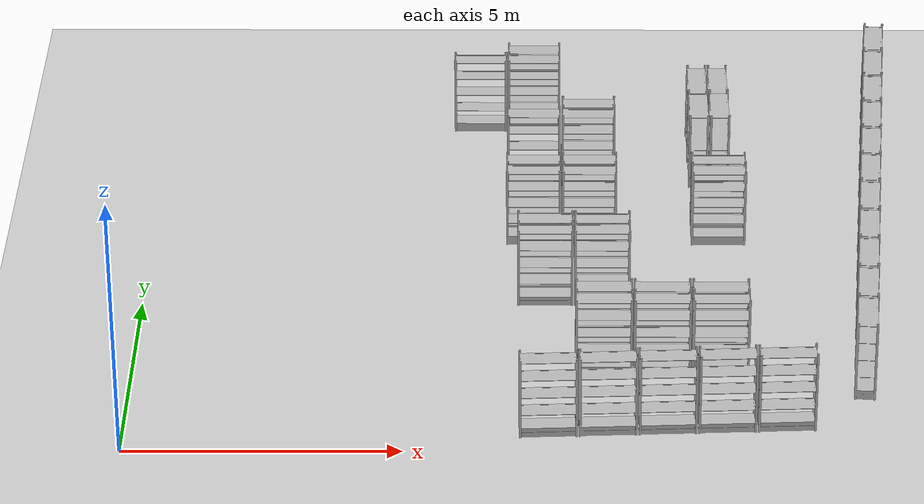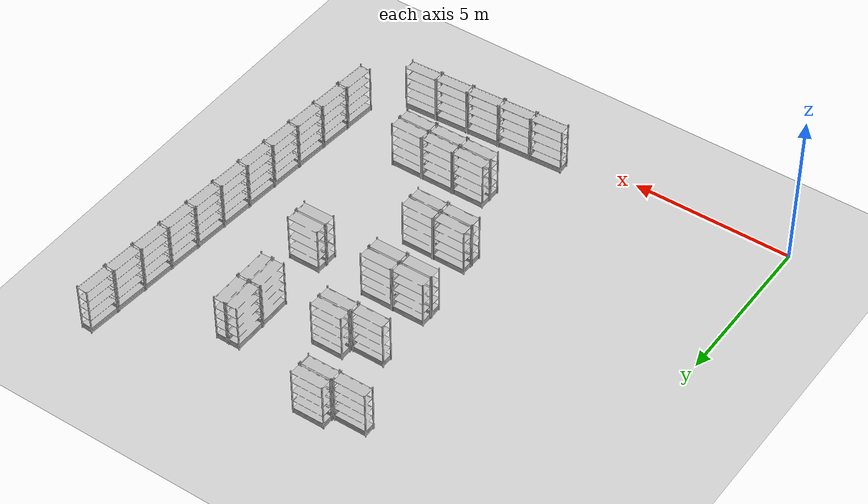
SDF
<sdf version="1.6">
 <world name="default">
  <model name="ground_plane">
   <static>1</static>
   <link name="link">
    <collision name="collision">
     <geometry><plane><normal>0 0 1</normal><size>100 100</size></plane></geometry>
     <surface>
      <contact><collide_bitmask>65535</collide_bitmask></contact>
      <friction><ode><mu>1000</mu><mu2>1000</mu2></ode></friction>
     </surface>
    </collision>
    <visual name="visual">
     <cast_shadows>0</cast_shadows>
     <geometry><plane><normal>0 0 1</normal><size>100 100</size></plane></geometry>
     <material>
      <script><uri>file://media/materials/scripts/gazebo.material</uri><name>Gazebo/Grey</name></script>
     </material>
    </visual>
   </link>
  </model>
  <model name="store_shelf_moduled_4">
   <link name="link">
    <collision name="collision">
     <geometry><mesh><uri>model://store_shelf_moduled/meshes/store_shelf_moduled.dae</uri></mesh></geometry>
    </collision>
    <visual name="visual">
     <geometry><mesh><uri>model://store_shelf_moduled/meshes/store_shelf_moduled.dae</uri></mesh></geometry>
    </visual>
    <inertial>
     <mass>1000</mass>
     <inertia>
      <ixx>840083</ixx>
      <ixy>0</ixy>
      <ixz>0</ixz>
      <iyy>475500</iyy>
      <iyz>0</iyz>
      <izz>1.30208e+06</izz>
     </inertia>
    </inertial>
   </link>
   <static>1</static>
   <pose>7.035482 0.4298979 0 0 0 0.04519106</pose>
  </model>
  <model name="store_shelf_moduled_5">
   <link name="link">
    <collision name="collision">
     <geometry><mesh><uri>model://store_shelf_moduled/meshes/store_shelf_moduled.dae</uri></mesh></geometry>
    </collision>
    <visual name="visual">
     <geometry><mesh><uri>model://store_shelf_moduled/meshes/store_shelf_moduled.dae</uri></mesh></geometry>
    </visual>
    <inertial>
     <mass>1000</mass>
     <inertia>
      <ixx>840083</ixx>
      <ixy>0</ixy>
      <ixz>0</ixz>
      <iyy>475500</iyy>
      <iyz>0</iyz>
      <izz>1.30208e+06</izz>
     </inertia>
    </inertial>
   </link>
   <static>1</static>
   <pose>8.095482 0.4798979 0 0 0 0.04519106</pose>
  </model>
  <model name="store_shelf_moduled_6">
   <link name="link">
    <collision name="collision">
     <geometry><mesh><uri>model://store_shelf_moduled/meshes/store_shelf_moduled.dae</uri></mesh></geometry>
    </collision>
    <visual name="visual">
     <geometry><mesh><uri>model://store_shelf_moduled/meshes/store_shelf_moduled.dae</uri></mesh></geometry>
    </visual>
    <inertial>
     <mass>1000</mass>
     <inertia>
      <ixx>840083</ixx>
      <ixy>0</ixy>
      <ixz>0</ixz>
      <iyy>475500</iyy>
      <iyz>0</iyz>
      <izz>1.30208e+06</izz>
     </inertia>
    </inertial>
   </link>
   <static>1</static>
   <pose>9.155482 0.5298979 0 0 0 0.04519106</pose>
  </model>
  <model name="store_shelf_moduled_7">
   <link name="link">
    <collision name="collision">
     <geometry><mesh><uri>model://store_shelf_moduled/meshes/store_shelf_moduled.dae</uri></mesh></geometry>
    </collision>
    <visual name="visual">
     <geometry><mesh><uri>model://store_shelf_moduled/meshes/store_shelf_moduled.dae</uri></mesh></geometry>
    </visual>
    <inertial>
     <mass>1000</mass>
     <inertia>
      <ixx>840083</ixx>
      <ixy>0</ixy>
      <ixz>0</ixz>
      <iyy>475500</iyy>
      <iyz>0</iyz>
      <izz>1.30208e+06</izz>
     </inertia>
    </inertial>
   </link>
   <static>1</static>
   <pose>10.21548 0.5798979 0 0 0 0.04519106</pose>
  </model>
  <model name="store_shelf_moduled_8">
   <link name="link">
    <collision name="collision">
     <geometry><mesh><uri>model://store_shelf_moduled/meshes/store_shelf_moduled.dae</uri></mesh></geometry>
    </collision>
    <visual name="visual">
     <geometry><mesh><uri>model://store_shelf_moduled/meshes/store_shelf_moduled.dae</uri></mesh></geometry>
    </visual>
    <inertial>
     <mass>1000</mass>
     <inertia>
      <ixx>840083</ixx>
      <ixy>0</ixy>
      <ixz>0</ixz>
      <iyy>475500</iyy>
      <iyz>0</iyz>
      <izz>1.30208e+06</izz>
     </inertia>
    </inertial>
   </link>
   <static>1</static>
   <pose>11.27548 0.6298979 0 0 0 0.04519106</pose>
  </model>
  <model name="store_shelf_moduled_9">
   <link name="link">
    <collision name="collision">
     <geometry><mesh><uri>model://store_shelf_moduled/meshes/store_shelf_moduled.dae</uri></mesh></geometry>
    </collision>
    <visual name="visual">
     <geometry><mesh><uri>model://store_shelf_moduled/meshes/store_shelf_moduled.dae</uri></mesh></geometry>
    </visual>
    <inertial>
     <mass>1000</mass>
     <inertia>
      <ixx>840083</ixx>
      <ixy>0</ixy>
      <ixz>0</ixz>
      <iyy>475500</iyy>
      <iyz>0</iyz>
      <izz>1.30208e+06</izz>
     </inertia>
    </inertial>
   </link>
   <static>1</static>
   <pose>13.45029 1.687601 0 0 0 1.494713</pose>
  </model>
  <model name="store_shelf_moduled_10">
   <link name="link">
    <collision name="collision">
     <geometry><mesh><uri>model://store_shelf_moduled/meshes/store_shelf_moduled.dae</uri></mesh></geometry>
    </collision>
    <visual name="visual">
     <geometry><mesh><uri>model://store_shelf_moduled/meshes/store_shelf_moduled.dae</uri></mesh></geometry>
    </visual>
    <inertial>
     <mass>1000</mass>
     <inertia>
      <ixx>840083</ixx>
      <ixy>0</ixy>
      <ixz>0</ixz>
      <iyy>475500</iyy>
      <iyz>0</iyz>
      <izz>1.30208e+06</izz>
     </inertia>
    </inertial>
   </link>
   <static>1</static>
   <pose>13.53029 2.747601 0 0 0 1.494713</pose>
  </model>
  <model name="store_shelf_moduled_11">
   <link name="link">
    <collision name="collision">
     <geometry><mesh><uri>model://store_shelf_moduled/meshes/store_shelf_moduled.dae</uri></mesh></geometry>
    </collision>
    <visual name="visual">
     <geometry><mesh><uri>model://store_shelf_moduled/meshes/store_shelf_moduled.dae</uri></mesh></geometry>
    </visual>
    <inertial>
     <mass>1000</mass>
     <inertia>
      <ixx>840083</ixx>
      <ixy>0</ixy>
      <ixz>0</ixz>
      <iyy>475500</iyy>
      <iyz>0</iyz>
      <izz>1.30208e+06</izz>
     </inertia>
    </inertial>
   </link>
   <static>1</static>
   <pose>13.61029 3.807601 0 0 0 1.494713</pose>
  </model>
  <model name="store_shelf_moduled_12">
   <link name="link">
    <collision name="collision">
     <geometry><mesh><uri>model://store_shelf_moduled/meshes/store_shelf_moduled.dae</uri></mesh></geometry>
    </collision>
    <visual name="visual">
     <geometry><mesh><uri>model://store_shelf_moduled/meshes/store_shelf_moduled.dae</uri></mesh></geometry>
    </visual>
    <inertial>
     <mass>1000</mass>
     <inertia>
      <ixx>840083</ixx>
      <ixy>0</ixy>
      <ixz>0</ixz>
      <iyy>475500</iyy>
      <iyz>0</iyz>
      <izz>1.30208e+06</izz>
     </inertia>
    </inertial>
   </link>
   <static>1</static>
   <pose>13.69029 4.857601 0 0 0 1.494713</pose>
  </model>
  <model name="store_shelf_moduled_13">
   <link name="link">
    <collision name="collision">
     <geometry><mesh><uri>model://store_shelf_moduled/meshes/store_shelf_moduled.dae</uri></mesh></geometry>
    </collision>
    <visual name="visual">
     <geometry><mesh><uri>model://store_shelf_moduled/meshes/store_shelf_moduled.dae</uri></mesh></geometry>
    </visual>
    <inertial>
     <mass>1000</mass>
     <inertia>
      <ixx>840083</ixx>
      <ixy>0</ixy>
      <ixz>0</ixz>
      <iyy>475500</iyy>
      <iyz>0</iyz>
      <izz>1.30208e+06</izz>
     </inertia>
    </inertial>
   </link>
   <static>1</static>
   <pose>13.77029 5.917601 0 0 0 1.494713</pose>
  </model>
  <model name="store_shelf_moduled_14">
   <link name="link">
    <collision name="collision">
     <geometry><mesh><uri>model://store_shelf_moduled/meshes/store_shelf_moduled.dae</uri></mesh></geometry>
    </collision>
    <visual name="visual">
     <geometry><mesh><uri>model://store_shelf_moduled/meshes/store_shelf_moduled.dae</uri></mesh></geometry>
    </visual>
    <inertial>
     <mass>1000</mass>
     <inertia>
      <ixx>840083</ixx>
      <ixy>0</ixy>
      <ixz>0</ixz>
      <iyy>475500</iyy>
      <iyz>0</iyz>
      <izz>1.30208e+06</izz>
     </inertia>
    </inertial>
   </link>
   <static>1</static>
   <pose>13.85029 6.977601 0 0 0 1.494713</pose>
  </model>
  <model name="store_shelf_moduled_15">
   <link name="link">
    <collision name="collision">
     <geometry><mesh><uri>model://store_shelf_moduled/meshes/store_shelf_moduled.dae</uri></mesh></geometry>
    </collision>
    <visual name="visual">
     <geometry><mesh><uri>model://store_shelf_moduled/meshes/store_shelf_moduled.dae</uri></mesh></geometry>
    </visual>
    <inertial>
     <mass>1000</mass>
     <inertia>
      <ixx>840083</ixx>
      <ixy>0</ixy>
      <ixz>0</ixz>
      <iyy>475500</iyy>
      <iyz>0</iyz>
      <izz>1.30208e+06</izz>
     </inertia>
    </inertial>
   </link>
   <static>1</static>
   <pose>13.93029 8.0276 0 0 0 1.494713</pose>
  </model>
  <model name="store_shelf_moduled_16">
   <link name="link">
    <collision name="collision">
     <geometry><mesh><uri>model://store_shelf_moduled/meshes/store_shelf_moduled.dae</uri></mesh></geometry>
    </collision>
    <visual name="visual">
     <geometry><mesh><uri>model://store_shelf_moduled/meshes/store_shelf_moduled.dae</uri></mesh></geometry>
    </visual>
    <inertial>
     <mass>1000</mass>
     <inertia>
      <ixx>840083</ixx>
      <ixy>0</ixy>
      <ixz>0</ixz>
      <iyy>475500</iyy>
      <iyz>0</iyz>
      <izz>1.30208e+06</izz>
     </inertia>
    </inertial>
   </link>
   <static>1</static>
   <pose>14.01029 9.087601 0 0 0 1.494713</pose>
  </model>
  <model name="store_shelf_moduled_17">
   <link name="link">
    <collision name="collision">
     <geometry><mesh><uri>model://store_shelf_moduled/meshes/store_shelf_moduled.dae</uri></mesh></geometry>
    </collision>
    <visual name="visual">
     <geometry><mesh><uri>model://store_shelf_moduled/meshes/store_shelf_moduled.dae</uri></mesh></geometry>
    </visual>
    <inertial>
     <mass>1000</mass>
     <inertia>
      <ixx>840083</ixx>
      <ixy>0</ixy>
      <ixz>0</ixz>
      <iyy>475500</iyy>
      <iyz>0</iyz>
      <izz>1.30208e+06</izz>
     </inertia>
    </inertial>
   </link>
   <static>1</static>
   <pose>14.09029 10.1476 0 0 0 1.494713</pose>
  </model>
  <model name="store_shelf_moduled_18">
   <link name="link">
    <collision name="collision">
     <geometry><mesh><uri>model://store_shelf_moduled/meshes/store_shelf_moduled.dae</uri></mesh></geometry>
    </collision>
    <visual name="visual">
     <geometry><mesh><uri>model://store_shelf_moduled/meshes/store_shelf_moduled.dae</uri></mesh></geometry>
    </visual>
    <inertial>
     <mass>1000</mass>
     <inertia>
      <ixx>840083</ixx>
      <ixy>0</ixy>
      <ixz>0</ixz>
      <iyy>475500</iyy>
      <iyz>0</iyz>
      <izz>1.30208e+06</izz>
     </inertia>
    </inertial>
   </link>
   <static>1</static>
   <pose>14.17029 11.1976 0 0 0 1.494713</pose>
  </model>
  <model name="store_shelf_moduled_19">
   <link name="link">
    <collision name="collision">
     <geometry><mesh><uri>model://store_shelf_moduled/meshes/store_shelf_moduled.dae</uri></mesh></geometry>
    </collision>
    <visual name="visual">
     <geometry><mesh><uri>model://store_shelf_moduled/meshes/store_shelf_moduled.dae</uri></mesh></geometry>
    </visual>
    <inertial>
     <mass>1000</mass>
     <inertia>
      <ixx>840083</ixx>
      <ixy>0</ixy>
      <ixz>0</ixz>
      <iyy>475500</iyy>
      <iyz>0</iyz>
      <izz>1.30208e+06</izz>
     </inertia>
    </inertial>
   </link>
   <static>1</static>
   <pose>14.25029 12.2576 0 0 0 1.494713</pose>
  </model>
  <model name="store_shelf_moduled_34">
   <link name="link">
    <collision name="collision">
     <geometry><mesh><uri>model://store_shelf_moduled/meshes/store_shelf_moduled.dae</uri></mesh></geometry>
    </collision>
    <visual name="visual">
     <geometry><mesh><uri>model://store_shelf_moduled/meshes/store_shelf_moduled.dae</uri></mesh></geometry>
    </visual>
    <inertial>
     <mass>1000</mass>
     <inertia>
      <ixx>840083</ixx>
      <ixy>0</ixy>
      <ixz>0</ixz>
      <iyy>475500</iyy>
      <iyz>0</iyz>
      <izz>1.30208e+06</izz>
     </inertia>
    </inertial>
   </link>
   <static>1</static>
   <pose>7.82 9.84 0 0 0 -3.141593</pose>
  </model>
  <model name="store_shelf_moduled_35">
   <link name="link">
    <collision name="collision">
     <geometry><mesh><uri>model://store_shelf_moduled/meshes/store_shelf_moduled.dae</uri></mesh></geometry>
    </collision>
    <visual name="visual">
     <geometry><mesh><uri>model://store_shelf_moduled/meshes/store_shelf_moduled.dae</uri></mesh></geometry>
    </visual>
    <inertial>
     <mass>1000</mass>
     <inertia>
      <ixx>840083</ixx>
      <ixy>0</ixy>
      <ixz>0</ixz>
      <iyy>475500</iyy>
      <iyz>0</iyz>
      <izz>1.30208e+06</izz>
     </inertia>
    </inertial>
   </link>
   <static>1</static>
   <pose>7.82 9.84 0 0 0 0</pose>
  </model>
  <model name="store_shelf_moduled_36">
   <link name="link">
    <collision name="collision">
     <geometry><mesh><uri>model://store_shelf_moduled/meshes/store_shelf_moduled.dae</uri></mesh></geometry>
    </collision>
    <visual name="visual">
     <geometry><mesh><uri>model://store_shelf_moduled/meshes/store_shelf_moduled.dae</uri></mesh></geometry>
    </visual>
    <inertial>
     <mass>1000</mass>
     <inertia>
      <ixx>840083</ixx>
      <ixy>0</ixy>
      <ixz>0</ixz>
      <iyy>475500</iyy>
      <iyz>0</iyz>
      <izz>1.30208e+06</izz>
     </inertia>
    </inertial>
   </link>
   <static>1</static>
   <pose>8.88 9.84 0 0 0 -3.141593</pose>
  </model>
  <model name="store_shelf_moduled_37">
   <link name="link">
    <collision name="collision">
     <geometry><mesh><uri>model://store_shelf_moduled/meshes/store_shelf_moduled.dae</uri></mesh></geometry>
    </collision>
    <visual name="visual">
     <geometry><mesh><uri>model://store_shelf_moduled/meshes/store_shelf_moduled.dae</uri></mesh></geometry>
    </visual>
    <inertial>
     <mass>1000</mass>
     <inertia>
      <ixx>840083</ixx>
      <ixy>0</ixy>
      <ixz>0</ixz>
      <iyy>475500</iyy>
      <iyz>0</iyz>
      <izz>1.30208e+06</izz>
     </inertia>
    </inertial>
   </link>
   <static>1</static>
   <pose>10.28 7.6 0 0 0 0</pose>
  </model>
  <model name="store_shelf_moduled_38">
   <link name="link">
    <collision name="collision">
     <geometry><mesh><uri>model://store_shelf_moduled/meshes/store_shelf_moduled.dae</uri></mesh></geometry>
    </collision>
    <visual name="visual">
     <geometry><mesh><uri>model://store_shelf_moduled/meshes/store_shelf_moduled.dae</uri></mesh></geometry>
    </visual>
    <inertial>
     <mass>1000</mass>
     <inertia>
      <ixx>840083</ixx>
      <ixy>0</ixy>
      <ixz>0</ixz>
      <iyy>475500</iyy>
      <iyz>0</iyz>
      <izz>1.30208e+06</izz>
     </inertia>
    </inertial>
   </link>
   <static>1</static>
   <pose>11.34 7.6 0 0 0 -3.141593</pose>
  </model>
  <model name="store_shelf_moduled_41">
   <link name="link">
    <collision name="collision">
     <geometry><mesh><uri>model://store_shelf_moduled/meshes/store_shelf_moduled.dae</uri></mesh></geometry>
    </collision>
    <visual name="visual">
     <geometry><mesh><uri>model://store_shelf_moduled/meshes/store_shelf_moduled.dae</uri></mesh></geometry>
    </visual>
    <inertial>
     <mass>1000</mass>
     <inertia>
      <ixx>840083</ixx>
      <ixy>0</ixy>
      <ixz>0</ixz>
      <iyy>475500</iyy>
      <iyz>0</iyz>
      <izz>1.30208e+06</izz>
     </inertia>
    </inertial>
   </link>
   <static>1</static>
   <pose>6.76 7.6 0 0 0 0</pose>
  </model>
  <model name="store_shelf_moduled_42">
   <link name="link">
    <collision name="collision">
     <geometry><mesh><uri>model://store_shelf_moduled/meshes/store_shelf_moduled.dae</uri></mesh></geometry>
    </collision>
    <visual name="visual">
     <geometry><mesh><uri>model://store_shelf_moduled/meshes/store_shelf_moduled.dae</uri></mesh></geometry>
    </visual>
    <inertial>
     <mass>1000</mass>
     <inertia>
      <ixx>840083</ixx>
      <ixy>0</ixy>
      <ixz>0</ixz>
      <iyy>475500</iyy>
      <iyz>0</iyz>
      <izz>1.30208e+06</izz>
     </inertia>
    </inertial>
   </link>
   <static>1</static>
   <pose>7.82 7.6 0 0 0 -3.141593</pose>
  </model>
  <model name="store_shelf_moduled_43">
   <link name="link">
    <collision name="collision">
     <geometry><mesh><uri>model://store_shelf_moduled/meshes/store_shelf_moduled.dae</uri></mesh></geometry>
    </collision>
    <visual name="visual">
     <geometry><mesh><uri>model://store_shelf_moduled/meshes/store_shelf_moduled.dae</uri></mesh></geometry>
    </visual>
    <inertial>
     <mass>1000</mass>
     <inertia>
      <ixx>840083</ixx>
      <ixy>0</ixy>
      <ixz>0</ixz>
      <iyy>475500</iyy>
      <iyz>0</iyz>
      <izz>1.30208e+06</izz>
     </inertia>
    </inertial>
   </link>
   <static>1</static>
   <pose>7.82 7.6 0 0 0 0</pose>
  </model>
  <model name="store_shelf_moduled_44">
   <link name="link">
    <collision name="collision">
     <geometry><mesh><uri>model://store_shelf_moduled/meshes/store_shelf_moduled.dae</uri></mesh></geometry>
    </collision>
    <visual name="visual">
     <geometry><mesh><uri>model://store_shelf_moduled/meshes/store_shelf_moduled.dae</uri></mesh></geometry>
    </visual>
    <inertial>
     <mass>1000</mass>
     <inertia>
      <ixx>840083</ixx>
      <ixy>0</ixy>
      <ixz>0</ixz>
      <iyy>475500</iyy>
      <iyz>0</iyz>
      <izz>1.30208e+06</izz>
     </inertia>
    </inertial>
   </link>
   <static>1</static>
   <pose>8.88 7.6 0 0 0 -3.141593</pose>
  </model>
  <model name="store_shelf_moduled_51">
   <link name="link">
    <collision name="collision">
     <geometry><mesh><uri>model://store_shelf_moduled/meshes/store_shelf_moduled.dae</uri></mesh></geometry>
    </collision>
    <visual name="visual">
     <geometry><mesh><uri>model://store_shelf_moduled/meshes/store_shelf_moduled.dae</uri></mesh></geometry>
    </visual>
    <inertial>
     <mass>1000</mass>
     <inertia>
      <ixx>840083</ixx>
      <ixy>0</ixy>
      <ixz>0</ixz>
      <iyy>475500</iyy>
      <iyz>0</iyz>
      <izz>1.30208e+06</izz>
     </inertia>
    </inertial>
   </link>
   <static>1</static>
   <pose>6.98 5.36 0 0 0 0</pose>
  </model>
  <model name="store_shelf_moduled_52">
   <link name="link">
    <collision name="collision">
     <geometry><mesh><uri>model://store_shelf_moduled/meshes/store_shelf_moduled.dae</uri></mesh></geometry>
    </collision>
    <visual name="visual">
     <geometry><mesh><uri>model://store_shelf_moduled/meshes/store_shelf_moduled.dae</uri></mesh></geometry>
    </visual>
    <inertial>
     <mass>1000</mass>
     <inertia>
      <ixx>840083</ixx>
      <ixy>0</ixy>
      <ixz>0</ixz>
      <iyy>475500</iyy>
      <iyz>0</iyz>
      <izz>1.30208e+06</izz>
     </inertia>
    </inertial>
   </link>
   <static>1</static>
   <pose>8.04 5.36 0 0 0 -3.141593</pose>
  </model>
  <model name="store_shelf_moduled_53">
   <link name="link">
    <collision name="collision">
     <geometry><mesh><uri>model://store_shelf_moduled/meshes/store_shelf_moduled.dae</uri></mesh></geometry>
    </collision>
    <visual name="visual">
     <geometry><mesh><uri>model://store_shelf_moduled/meshes/store_shelf_moduled.dae</uri></mesh></geometry>
    </visual>
    <inertial>
     <mass>1000</mass>
     <inertia>
      <ixx>840083</ixx>
      <ixy>0</ixy>
      <ixz>0</ixz>
      <iyy>475500</iyy>
      <iyz>0</iyz>
      <izz>1.30208e+06</izz>
     </inertia>
    </inertial>
   </link>
   <static>1</static>
   <pose>8.04 5.36 0 0 0 0</pose>
  </model>
  <model name="store_shelf_moduled_54">
   <link name="link">
    <collision name="collision">
     <geometry><mesh><uri>model://store_shelf_moduled/meshes/store_shelf_moduled.dae</uri></mesh></geometry>
    </collision>
    <visual name="visual">
     <geometry><mesh><uri>model://store_shelf_moduled/meshes/store_shelf_moduled.dae</uri></mesh></geometry>
    </visual>
    <inertial>
     <mass>1000</mass>
     <inertia>
      <ixx>840083</ixx>
      <ixy>0</ixy>
      <ixz>0</ixz>
      <iyy>475500</iyy>
      <iyz>0</iyz>
      <izz>1.30208e+06</izz>
     </inertia>
    </inertial>
   </link>
   <static>1</static>
   <pose>9.1 5.36 0 0 0 -3.141593</pose>
  </model>
  <model name="store_shelf_moduled_59">
   <link name="link">
    <collision name="collision">
     <geometry><mesh><uri>model://store_shelf_moduled/meshes/store_shelf_moduled.dae</uri></mesh></geometry>
    </collision>
    <visual name="visual">
     <geometry><mesh><uri>model://store_shelf_moduled/meshes/store_shelf_moduled.dae</uri></mesh></geometry>
    </visual>
    <inertial>
     <mass>1000</mass>
     <inertia>
      <ixx>840083</ixx>
      <ixy>0</ixy>
      <ixz>0</ixz>
      <iyy>475500</iyy>
      <iyz>0</iyz>
      <izz>1.30208e+06</izz>
     </inertia>
    </inertial>
   </link>
   <static>1</static>
   <pose>8.04 2.9 0 0 0 0</pose>
  </model>
  <model name="store_shelf_moduled_60">
   <link name="link">
    <collision name="collision">
     <geometry><mesh><uri>model://store_shelf_moduled/meshes/store_shelf_moduled.dae</uri></mesh></geometry>
    </collision>
    <visual name="visual">
     <geometry><mesh><uri>model://store_shelf_moduled/meshes/store_shelf_moduled.dae</uri></mesh></geometry>
    </visual>
    <inertial>
     <mass>1000</mass>
     <inertia>
      <ixx>840083</ixx>
      <ixy>0</ixy>
      <ixz>0</ixz>
      <iyy>475500</iyy>
      <iyz>0</iyz>
      <izz>1.30208e+06</izz>
     </inertia>
    </inertial>
   </link>
   <static>1</static>
   <pose>9.1 2.9 0 0 0 -3.141593</pose>
  </model>
  <model name="store_shelf_moduled_61">
   <link name="link">
    <collision name="collision">
     <geometry><mesh><uri>model://store_shelf_moduled/meshes/store_shelf_moduled.dae</uri></mesh></geometry>
    </collision>
    <visual name="visual">
     <geometry><mesh><uri>model://store_shelf_moduled/meshes/store_shelf_moduled.dae</uri></mesh></geometry>
    </visual>
    <inertial>
     <mass>1000</mass>
     <inertia>
      <ixx>840083</ixx>
      <ixy>0</ixy>
      <ixz>0</ixz>
      <iyy>475500</iyy>
      <iyz>0</iyz>
      <izz>1.30208e+06</izz>
     </inertia>
    </inertial>
   </link>
   <static>1</static>
   <pose>9.1 2.9 0 0 0 0</pose>
  </model>
  <model name="store_shelf_moduled_62">
   <link name="link">
    <collision name="collision">
     <geometry><mesh><uri>model://store_shelf_moduled/meshes/store_shelf_moduled.dae</uri></mesh></geometry>
    </collision>
    <visual name="visual">
     <geometry><mesh><uri>model://store_shelf_moduled/meshes/store_shelf_moduled.dae</uri></mesh></geometry>
    </visual>
    <inertial>
     <mass>1000</mass>
     <inertia>
      <ixx>840083</ixx>
      <ixy>0</ixy>
      <ixz>0</ixz>
      <iyy>475500</iyy>
      <iyz>0</iyz>
      <izz>1.30208e+06</izz>
     </inertia>
    </inertial>
   </link>
   <static>1</static>
   <pose>10.16 2.9 0 0 0 -3.141593</pose>
  </model>
  <model name="store_shelf_moduled_63">
   <link name="link">
    <collision name="collision">
     <geometry><mesh><uri>model://store_shelf_moduled/meshes/store_shelf_moduled.dae</uri></mesh></geometry>
    </collision>
    <visual name="visual">
     <geometry><mesh><uri>model://store_shelf_moduled/meshes/store_shelf_moduled.dae</uri></mesh></geometry>
    </visual>
    <inertial>
     <mass>1000</mass>
     <inertia>
      <ixx>840083</ixx>
      <ixy>0</ixy>
      <ixz>0</ixz>
      <iyy>475500</iyy>
      <iyz>0</iyz>
      <izz>1.30208e+06</izz>
     </inertia>
    </inertial>
   </link>
   <static>1</static>
   <pose>10.16 2.9 0 0 0 0</pose>
  </model>
  <model name="store_shelf_moduled_64">
   <link name="link">
    <collision name="collision">
     <geometry><mesh><uri>model://store_shelf_moduled/meshes/store_shelf_moduled.dae</uri></mesh></geometry>
    </collision>
    <visual name="visual">
     <geometry><mesh><uri>model://store_shelf_moduled/meshes/store_shelf_moduled.dae</uri></mesh></geometry>
    </visual>
    <inertial>
     <mass>1000</mass>
     <inertia>
      <ixx>840083</ixx>
      <ixy>0</ixy>
      <ixz>0</ixz>
      <iyy>475500</iyy>
      <iyz>0</iyz>
      <izz>1.30208e+06</izz>
     </inertia>
    </inertial>
   </link>
   <static>1</static>
   <pose>11.22 2.9 0 0 0 -3.141593</pose>
  </model>
  <model name="store_shelf_moduled_66">
   <link name="link">
    <collision name="collision">
     <geometry><mesh><uri>model://store_shelf_moduled/meshes/store_shelf_moduled.dae</uri></mesh></geometry>
    </collision>
    <visual name="visual">
     <geometry><mesh><uri>model://store_shelf_moduled/meshes/store_shelf_moduled.dae</uri></mesh></geometry>
    </visual>
    <inertial>
     <mass>1000</mass>
     <inertia>
      <ixx>840083</ixx>
      <ixy>0</ixy>
      <ixz>0</ixz>
      <iyy>475500</iyy>
      <iyz>0</iyz>
      <izz>1.30208e+06</izz>
     </inertia>
    </inertial>
   </link>
   <static>1</static>
   <pose>6.76 12.08 0 0 0 -3.141593</pose>
  </model>
  <model name="store_shelf_moduled_67">
   <link name="link">
    <collision name="collision">
     <geometry><mesh><uri>model://store_shelf_moduled/meshes/store_shelf_moduled.dae</uri></mesh></geometry>
    </collision>
    <visual name="visual">
     <geometry><mesh><uri>model://store_shelf_moduled/meshes/store_shelf_moduled.dae</uri></mesh></geometry>
    </visual>
    <inertial>
     <mass>1000</mass>
     <inertia>
      <ixx>840083</ixx>
      <ixy>0</ixy>
      <ixz>0</ixz>
      <iyy>475500</iyy>
      <iyz>0</iyz>
      <izz>1.30208e+06</izz>
     </inertia>
    </inertial>
   </link>
   <static>1</static>
   <pose>6.76 12.08 0 0 0 0</pose>
  </model>
  <model name="store_shelf_moduled_68">
   <link name="link">
    <collision name="collision">
     <geometry><mesh><uri>model://store_shelf_moduled/meshes/store_shelf_moduled.dae</uri></mesh></geometry>
    </collision>
    <visual name="visual">
     <geometry><mesh><uri>model://store_shelf_moduled/meshes/store_shelf_moduled.dae</uri></mesh></geometry>
    </visual>
    <inertial>
     <mass>1000</mass>
     <inertia>
      <ixx>840083</ixx>
      <ixy>0</ixy>
      <ixz>0</ixz>
      <iyy>475500</iyy>
      <iyz>0</iyz>
      <izz>1.30208e+06</izz>
     </inertia>
    </inertial>
   </link>
   <static>1</static>
   <pose>7.82 12.08 0 0 0 -3.141593</pose>
  </model>
  <model name="store_shelf_moduled_75">
   <link name="link">
    <collision name="collision">
     <geometry><mesh><uri>model://store_shelf_moduled/meshes/store_shelf_moduled.dae</uri></mesh></geometry>
    </collision>
    <visual name="visual">
     <geometry><mesh><uri>model://store_shelf_moduled/meshes/store_shelf_moduled.dae</uri></mesh></geometry>
    </visual>
    <inertial>
     <mass>1000</mass>
     <inertia>
      <ixx>840083</ixx>
      <ixy>0</ixy>
      <ixz>0</ixz>
      <iyy>475500</iyy>
      <iyz>0</iyz>
      <izz>1.30208e+06</izz>
     </inertia>
    </inertial>
   </link>
   <static>1</static>
   <pose>10.7 9.42 0 0 0 1.570796</pose>
  </model>
  <model name="store_shelf_moduled_76">
   <link name="link">
    <collision name="collision">
     <geometry><mesh><uri>model://store_shelf_moduled/meshes/store_shelf_moduled.dae</uri></mesh></geometry>
    </collision>
    <visual name="visual">
     <geometry><mesh><uri>model://store_shelf_moduled/meshes/store_shelf_moduled.dae</uri></mesh></geometry>
    </visual>
    <inertial>
     <mass>1000</mass>
     <inertia>
      <ixx>840083</ixx>
      <ixy>0</ixy>
      <ixz>0</ixz>
      <iyy>475500</iyy>
      <iyz>0</iyz>
      <izz>1.30208e+06</izz>
     </inertia>
    </inertial>
   </link>
   <static>1</static>
   <pose>10.7 10.48 0 0 0 -1.570796</pose>
  </model>
  <model name="store_shelf_moduled_77">
   <link name="link">
    <collision name="collision">
     <geometry><mesh><uri>model://store_shelf_moduled/meshes/store_shelf_moduled.dae</uri></mesh></geometry>
    </collision>
    <visual name="visual">
     <geometry><mesh><uri>model://store_shelf_moduled/meshes/store_shelf_moduled.dae</uri></mesh></geometry>
    </visual>
    <inertial>
     <mass>1000</mass>
     <inertia>
      <ixx>840083</ixx>
      <ixy>0</ixy>
      <ixz>0</ixz>
      <iyy>475500</iyy>
      <iyz>0</iyz>
      <izz>1.30208e+06</izz>
     </inertia>
    </inertial>
   </link>
   <static>1</static>
   <pose>10.7 10.48 0 0 0 1.570796</pose>
  </model>
  <model name="store_shelf_moduled_78">
   <link name="link">
    <collision name="collision">
     <geometry><mesh><uri>model://store_shelf_moduled/meshes/store_shelf_moduled.dae</uri></mesh></geometry>
    </collision>
    <visual name="visual">
     <geometry><mesh><uri>model://store_shelf_moduled/meshes/store_shelf_moduled.dae</uri></mesh></geometry>
    </visual>
    <inertial>
     <mass>1000</mass>
     <inertia>
      <ixx>840083</ixx>
      <ixy>0</ixy>
      <ixz>0</ixz>
      <iyy>475500</iyy>
      <iyz>0</iyz>
      <izz>1.30208e+06</izz>
     </inertia>
    </inertial>
   </link>
   <static>1</static>
   <pose>10.7 11.54 0 0 0 -1.570796</pose>
  </model>
 </world>
</sdf>
